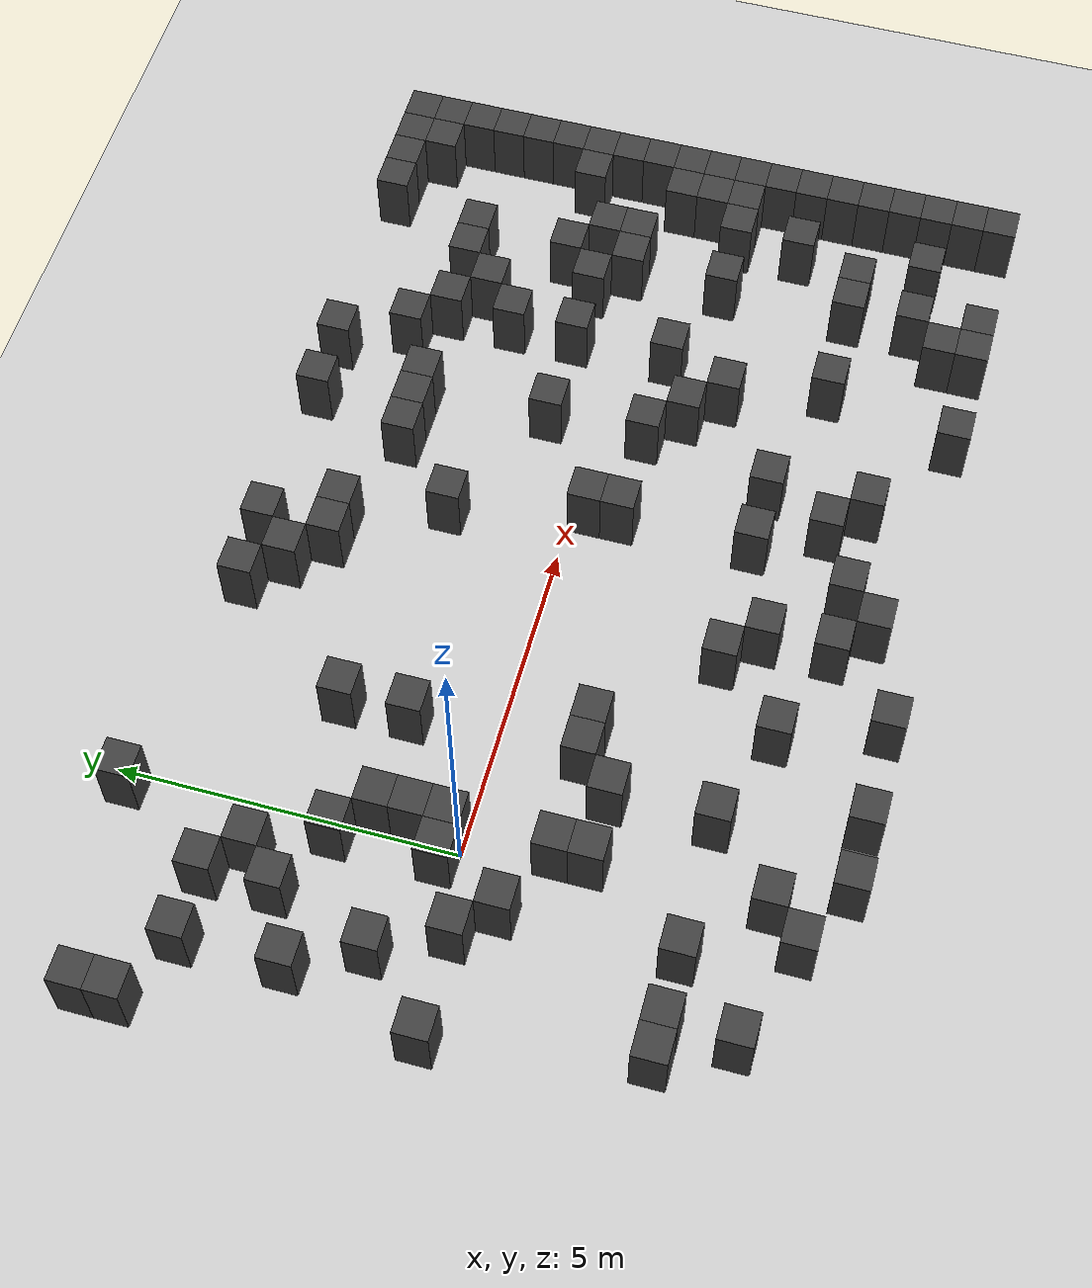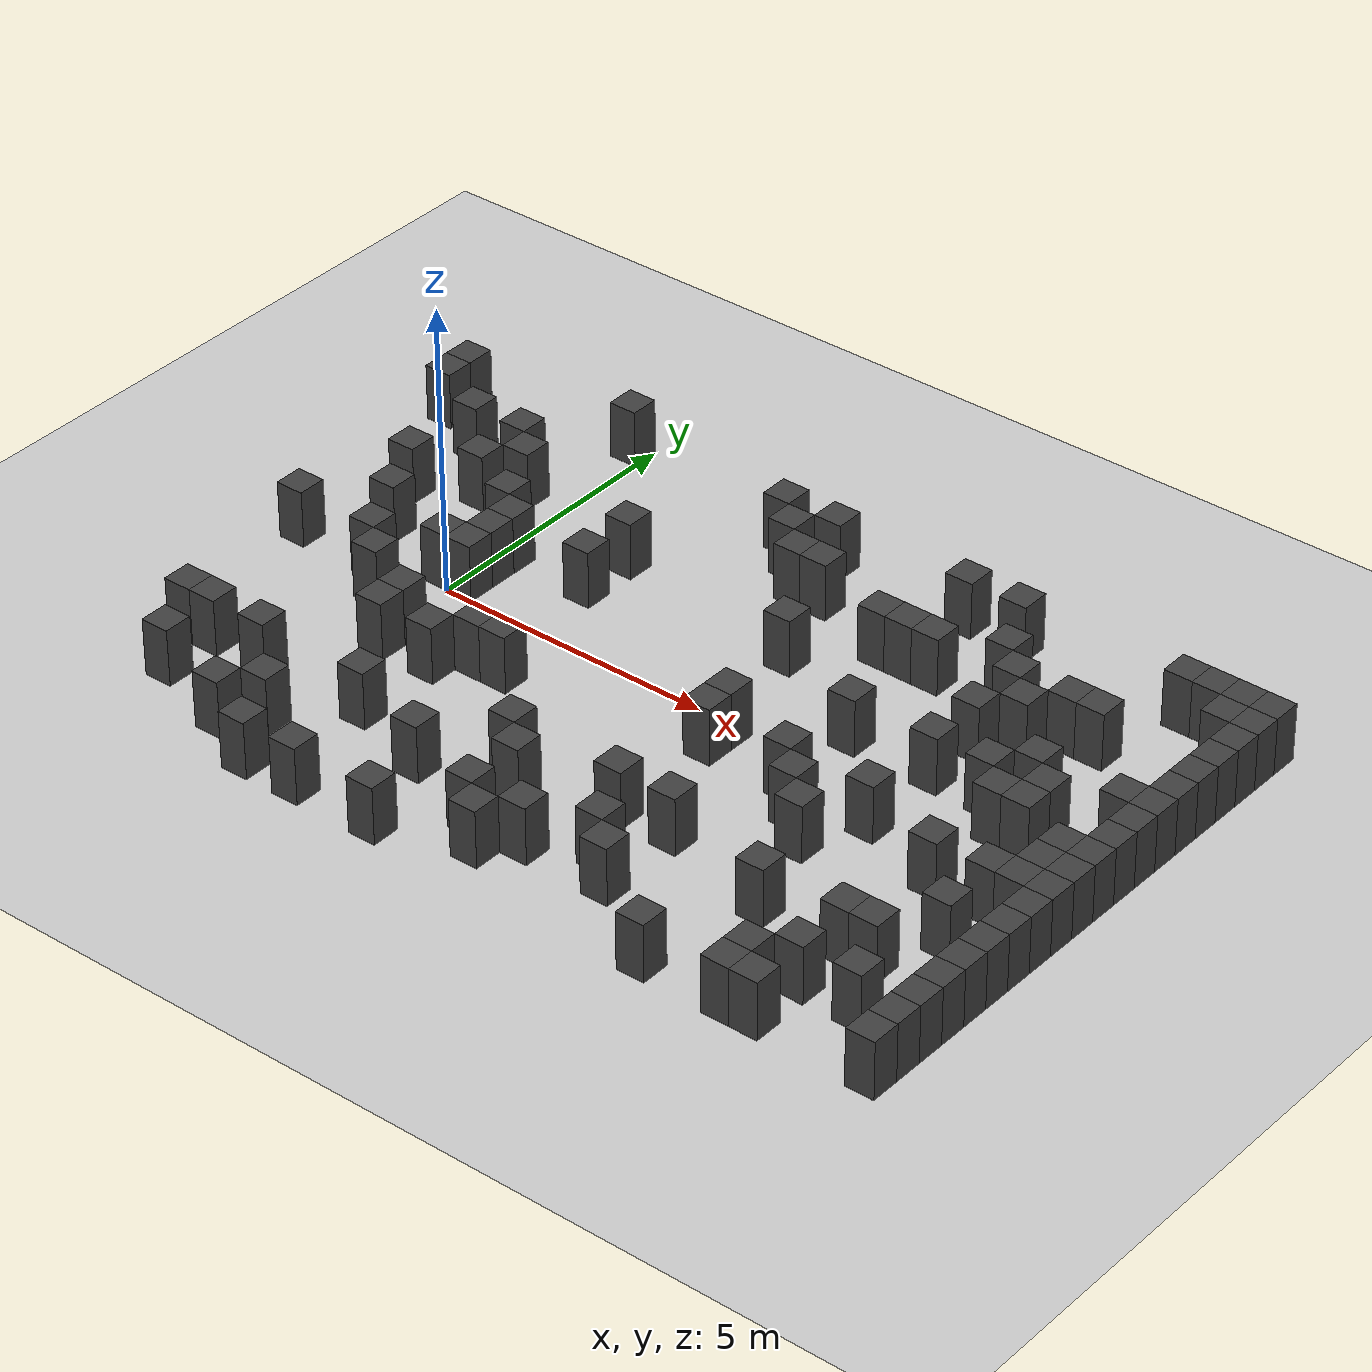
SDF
<sdf version="1.7">
 <world name="map_3200">
  <model name="ground_plane">
   <static>true</static>
   <link name="link">
    <collision name="collision">
     <geometry><plane><normal>0 0 1</normal><size>200 200</size></plane></geometry>
    </collision>
    <visual name="visual">
     <geometry><plane><normal>0 0 1</normal><size>200 200</size></plane></geometry>
     <material><ambient>0.8 0.8 0.8 1</ambient><diffuse>0.8 0.8 0.8 1</diffuse></material>
    </visual>
   </link>
  </model>
  <model name="maze_environment">
   <static>true</static>
   <link name="wall_180">
    <pose>-0.250 4.750 0.500 0 0 0</pose>
    <collision name="col"><geometry><box><size>0.5 0.5 1.0</size></box></geometry></collision>
    <visual name="vis">
     <geometry><box><size>0.5 0.5 1.0</size></box></geometry>
     <material><ambient>0.15 0.15 0.15 1</ambient><diffuse>0.25 0.25 0.25 1</diffuse></material>
    </visual>
   </link>
   <link name="wall_189">
    <pose>-3.250 4.250 0.500 0 0 0</pose>
    <collision name="col"><geometry><box><size>0.5 0.5 1.0</size></box></geometry></collision>
    <visual name="vis">
     <geometry><box><size>0.5 0.5 1.0</size></box></geometry>
     <material><ambient>0.15 0.15 0.15 1</ambient><diffuse>0.25 0.25 0.25 1</diffuse></material>
    </visual>
   </link>
   <link name="wall_190">
    <pose>3.250 4.250 0.500 0 0 0</pose>
    <collision name="col"><geometry><box><size>0.5 0.5 1.0</size></box></geometry></collision>
    <visual name="vis">
     <geometry><box><size>0.5 0.5 1.0</size></box></geometry>
     <material><ambient>0.15 0.15 0.15 1</ambient><diffuse>0.25 0.25 0.25 1</diffuse></material>
    </visual>
   </link>
   <link name="wall_191">
    <pose>4.250 4.250 0.500 0 0 0</pose>
    <collision name="col"><geometry><box><size>0.5 0.5 1.0</size></box></geometry></collision>
    <visual name="vis">
     <geometry><box><size>0.5 0.5 1.0</size></box></geometry>
     <material><ambient>0.15 0.15 0.15 1</ambient><diffuse>0.25 0.25 0.25 1</diffuse></material>
    </visual>
   </link>
   <link name="wall_192">
    <pose>6.750 4.250 0.500 0 0 0</pose>
    <collision name="col"><geometry><box><size>0.5 0.5 1.0</size></box></geometry></collision>
    <visual name="vis">
     <geometry><box><size>0.5 0.5 1.0</size></box></geometry>
     <material><ambient>0.15 0.15 0.15 1</ambient><diffuse>0.25 0.25 0.25 1</diffuse></material>
    </visual>
   </link>
   <link name="wall_193">
    <pose>7.750 4.250 0.500 0 0 0</pose>
    <collision name="col"><geometry><box><size>0.5 0.5 1.0</size></box></geometry></collision>
    <visual name="vis">
     <geometry><box><size>0.5 0.5 1.0</size></box></geometry>
     <material><ambient>0.15 0.15 0.15 1</ambient><diffuse>0.25 0.25 0.25 1</diffuse></material>
    </visual>
   </link>
   <link name="wall_194">
    <pose>10.750 4.250 0.500 0 0 0</pose>
    <collision name="col"><geometry><box><size>0.5 0.5 1.0</size></box></geometry></collision>
    <visual name="vis">
     <geometry><box><size>0.5 0.5 1.0</size></box></geometry>
     <material><ambient>0.15 0.15 0.15 1</ambient><diffuse>0.25 0.25 0.25 1</diffuse></material>
    </visual>
   </link>
   <link name="wall_195">
    <pose>11.250 4.250 0.500 0 0 0</pose>
    <collision name="col"><geometry><box><size>0.5 0.5 1.0</size></box></geometry></collision>
    <visual name="vis">
     <geometry><box><size>0.5 0.5 1.0</size></box></geometry>
     <material><ambient>0.15 0.15 0.15 1</ambient><diffuse>0.25 0.25 0.25 1</diffuse></material>
    </visual>
   </link>
   <link name="wall_196">
    <pose>11.750 4.250 0.500 0 0 0</pose>
    <collision name="col"><geometry><box><size>0.5 0.5 1.0</size></box></geometry></collision>
    <visual name="vis">
     <geometry><box><size>0.5 0.5 1.0</size></box></geometry>
     <material><ambient>0.15 0.15 0.15 1</ambient><diffuse>0.25 0.25 0.25 1</diffuse></material>
    </visual>
   </link>
   <link name="wall_197">
    <pose>12.250 4.250 0.500 0 0 0</pose>
    <collision name="col"><geometry><box><size>0.5 0.5 1.0</size></box></geometry></collision>
    <visual name="vis">
     <geometry><box><size>0.5 0.5 1.0</size></box></geometry>
     <material><ambient>0.15 0.15 0.15 1</ambient><diffuse>0.25 0.25 0.25 1</diffuse></material>
    </visual>
   </link>
   <link name="wall_202">
    <pose>-3.250 3.750 0.500 0 0 0</pose>
    <collision name="col"><geometry><box><size>0.5 0.5 1.0</size></box></geometry></collision>
    <visual name="vis">
     <geometry><box><size>0.5 0.5 1.0</size></box></geometry>
     <material><ambient>0.15 0.15 0.15 1</ambient><diffuse>0.25 0.25 0.25 1</diffuse></material>
    </visual>
   </link>
   <link name="wall_203">
    <pose>3.750 3.750 0.500 0 0 0</pose>
    <collision name="col"><geometry><box><size>0.5 0.5 1.0</size></box></geometry></collision>
    <visual name="vis">
     <geometry><box><size>0.5 0.5 1.0</size></box></geometry>
     <material><ambient>0.15 0.15 0.15 1</ambient><diffuse>0.25 0.25 0.25 1</diffuse></material>
    </visual>
   </link>
   <link name="wall_204">
    <pose>11.750 3.750 0.500 0 0 0</pose>
    <collision name="col"><geometry><box><size>0.5 0.5 1.0</size></box></geometry></collision>
    <visual name="vis">
     <geometry><box><size>0.5 0.5 1.0</size></box></geometry>
     <material><ambient>0.15 0.15 0.15 1</ambient><diffuse>0.25 0.25 0.25 1</diffuse></material>
    </visual>
   </link>
   <link name="wall_205">
    <pose>12.250 3.750 0.500 0 0 0</pose>
    <collision name="col"><geometry><box><size>0.5 0.5 1.0</size></box></geometry></collision>
    <visual name="vis">
     <geometry><box><size>0.5 0.5 1.0</size></box></geometry>
     <material><ambient>0.15 0.15 0.15 1</ambient><diffuse>0.25 0.25 0.25 1</diffuse></material>
    </visual>
   </link>
   <link name="wall_212">
    <pose>-2.250 3.250 0.500 0 0 0</pose>
    <collision name="col"><geometry><box><size>0.5 0.5 1.0</size></box></geometry></collision>
    <visual name="vis">
     <geometry><box><size>0.5 0.5 1.0</size></box></geometry>
     <material><ambient>0.15 0.15 0.15 1</ambient><diffuse>0.25 0.25 0.25 1</diffuse></material>
    </visual>
   </link>
   <link name="wall_213">
    <pose>-1.250 3.250 0.500 0 0 0</pose>
    <collision name="col"><geometry><box><size>0.5 0.5 1.0</size></box></geometry></collision>
    <visual name="vis">
     <geometry><box><size>0.5 0.5 1.0</size></box></geometry>
     <material><ambient>0.15 0.15 0.15 1</ambient><diffuse>0.25 0.25 0.25 1</diffuse></material>
    </visual>
   </link>
   <link name="wall_214">
    <pose>4.250 3.250 0.500 0 0 0</pose>
    <collision name="col"><geometry><box><size>0.5 0.5 1.0</size></box></geometry></collision>
    <visual name="vis">
     <geometry><box><size>0.5 0.5 1.0</size></box></geometry>
     <material><ambient>0.15 0.15 0.15 1</ambient><diffuse>0.25 0.25 0.25 1</diffuse></material>
    </visual>
   </link>
   <link name="wall_215">
    <pose>4.750 3.250 0.500 0 0 0</pose>
    <collision name="col"><geometry><box><size>0.5 0.5 1.0</size></box></geometry></collision>
    <visual name="vis">
     <geometry><box><size>0.5 0.5 1.0</size></box></geometry>
     <material><ambient>0.15 0.15 0.15 1</ambient><diffuse>0.25 0.25 0.25 1</diffuse></material>
    </visual>
   </link>
   <link name="wall_216">
    <pose>8.250 3.250 0.500 0 0 0</pose>
    <collision name="col"><geometry><box><size>0.5 0.5 1.0</size></box></geometry></collision>
    <visual name="vis">
     <geometry><box><size>0.5 0.5 1.0</size></box></geometry>
     <material><ambient>0.15 0.15 0.15 1</ambient><diffuse>0.25 0.25 0.25 1</diffuse></material>
    </visual>
   </link>
   <link name="wall_217">
    <pose>12.250 3.250 0.500 0 0 0</pose>
    <collision name="col"><geometry><box><size>0.5 0.5 1.0</size></box></geometry></collision>
    <visual name="vis">
     <geometry><box><size>0.5 0.5 1.0</size></box></geometry>
     <material><ambient>0.15 0.15 0.15 1</ambient><diffuse>0.25 0.25 0.25 1</diffuse></material>
    </visual>
   </link>
   <link name="wall_221">
    <pose>-0.750 2.750 0.500 0 0 0</pose>
    <collision name="col"><geometry><box><size>0.5 0.5 1.0</size></box></geometry></collision>
    <visual name="vis">
     <geometry><box><size>0.5 0.5 1.0</size></box></geometry>
     <material><ambient>0.15 0.15 0.15 1</ambient><diffuse>0.25 0.25 0.25 1</diffuse></material>
    </visual>
   </link>
   <link name="wall_222">
    <pose>6.250 2.750 0.500 0 0 0</pose>
    <collision name="col"><geometry><box><size>0.5 0.5 1.0</size></box></geometry></collision>
    <visual name="vis">
     <geometry><box><size>0.5 0.5 1.0</size></box></geometry>
     <material><ambient>0.15 0.15 0.15 1</ambient><diffuse>0.25 0.25 0.25 1</diffuse></material>
    </visual>
   </link>
   <link name="wall_223">
    <pose>6.750 2.750 0.500 0 0 0</pose>
    <collision name="col"><geometry><box><size>0.5 0.5 1.0</size></box></geometry></collision>
    <visual name="vis">
     <geometry><box><size>0.5 0.5 1.0</size></box></geometry>
     <material><ambient>0.15 0.15 0.15 1</ambient><diffuse>0.25 0.25 0.25 1</diffuse></material>
    </visual>
   </link>
   <link name="wall_224">
    <pose>7.250 2.750 0.500 0 0 0</pose>
    <collision name="col"><geometry><box><size>0.5 0.5 1.0</size></box></geometry></collision>
    <visual name="vis">
     <geometry><box><size>0.5 0.5 1.0</size></box></geometry>
     <material><ambient>0.15 0.15 0.15 1</ambient><diffuse>0.25 0.25 0.25 1</diffuse></material>
    </visual>
   </link>
   <link name="wall_225">
    <pose>8.750 2.750 0.500 0 0 0</pose>
    <collision name="col"><geometry><box><size>0.5 0.5 1.0</size></box></geometry></collision>
    <visual name="vis">
     <geometry><box><size>0.5 0.5 1.0</size></box></geometry>
     <material><ambient>0.15 0.15 0.15 1</ambient><diffuse>0.25 0.25 0.25 1</diffuse></material>
    </visual>
   </link>
   <link name="wall_226">
    <pose>9.750 2.750 0.500 0 0 0</pose>
    <collision name="col"><geometry><box><size>0.5 0.5 1.0</size></box></geometry></collision>
    <visual name="vis">
     <geometry><box><size>0.5 0.5 1.0</size></box></geometry>
     <material><ambient>0.15 0.15 0.15 1</ambient><diffuse>0.25 0.25 0.25 1</diffuse></material>
    </visual>
   </link>
   <link name="wall_227">
    <pose>10.250 2.750 0.500 0 0 0</pose>
    <collision name="col"><geometry><box><size>0.5 0.5 1.0</size></box></geometry></collision>
    <visual name="vis">
     <geometry><box><size>0.5 0.5 1.0</size></box></geometry>
     <material><ambient>0.15 0.15 0.15 1</ambient><diffuse>0.25 0.25 0.25 1</diffuse></material>
    </visual>
   </link>
   <link name="wall_228">
    <pose>12.250 2.750 0.500 0 0 0</pose>
    <collision name="col"><geometry><box><size>0.5 0.5 1.0</size></box></geometry></collision>
    <visual name="vis">
     <geometry><box><size>0.5 0.5 1.0</size></box></geometry>
     <material><ambient>0.15 0.15 0.15 1</ambient><diffuse>0.25 0.25 0.25 1</diffuse></material>
    </visual>
   </link>
   <link name="wall_232">
    <pose>-1.250 2.250 0.500 0 0 0</pose>
    <collision name="col"><geometry><box><size>0.5 0.5 1.0</size></box></geometry></collision>
    <visual name="vis">
     <geometry><box><size>0.5 0.5 1.0</size></box></geometry>
     <material><ambient>0.15 0.15 0.15 1</ambient><diffuse>0.25 0.25 0.25 1</diffuse></material>
    </visual>
   </link>
   <link name="wall_233">
    <pose>1.750 2.250 0.500 0 0 0</pose>
    <collision name="col"><geometry><box><size>0.5 0.5 1.0</size></box></geometry></collision>
    <visual name="vis">
     <geometry><box><size>0.5 0.5 1.0</size></box></geometry>
     <material><ambient>0.15 0.15 0.15 1</ambient><diffuse>0.25 0.25 0.25 1</diffuse></material>
    </visual>
   </link>
   <link name="wall_234">
    <pose>9.250 2.250 0.500 0 0 0</pose>
    <collision name="col"><geometry><box><size>0.5 0.5 1.0</size></box></geometry></collision>
    <visual name="vis">
     <geometry><box><size>0.5 0.5 1.0</size></box></geometry>
     <material><ambient>0.15 0.15 0.15 1</ambient><diffuse>0.25 0.25 0.25 1</diffuse></material>
    </visual>
   </link>
   <link name="wall_235">
    <pose>12.250 2.250 0.500 0 0 0</pose>
    <collision name="col"><geometry><box><size>0.5 0.5 1.0</size></box></geometry></collision>
    <visual name="vis">
     <geometry><box><size>0.5 0.5 1.0</size></box></geometry>
     <material><ambient>0.15 0.15 0.15 1</ambient><diffuse>0.25 0.25 0.25 1</diffuse></material>
    </visual>
   </link>
   <link name="wall_239">
    <pose>-2.250 1.750 0.500 0 0 0</pose>
    <collision name="col"><geometry><box><size>0.5 0.5 1.0</size></box></geometry></collision>
    <visual name="vis">
     <geometry><box><size>0.5 0.5 1.0</size></box></geometry>
     <material><ambient>0.15 0.15 0.15 1</ambient><diffuse>0.25 0.25 0.25 1</diffuse></material>
    </visual>
   </link>
   <link name="wall_240">
    <pose>-0.250 1.750 0.500 0 0 0</pose>
    <collision name="col"><geometry><box><size>0.5 0.5 1.0</size></box></geometry></collision>
    <visual name="vis">
     <geometry><box><size>0.5 0.5 1.0</size></box></geometry>
     <material><ambient>0.15 0.15 0.15 1</ambient><diffuse>0.25 0.25 0.25 1</diffuse></material>
    </visual>
   </link>
   <link name="wall_241">
    <pose>5.250 1.750 0.500 0 0 0</pose>
    <collision name="col"><geometry><box><size>0.5 0.5 1.0</size></box></geometry></collision>
    <visual name="vis">
     <geometry><box><size>0.5 0.5 1.0</size></box></geometry>
     <material><ambient>0.15 0.15 0.15 1</ambient><diffuse>0.25 0.25 0.25 1</diffuse></material>
    </visual>
   </link>
   <link name="wall_242">
    <pose>8.750 1.750 0.500 0 0 0</pose>
    <collision name="col"><geometry><box><size>0.5 0.5 1.0</size></box></geometry></collision>
    <visual name="vis">
     <geometry><box><size>0.5 0.5 1.0</size></box></geometry>
     <material><ambient>0.15 0.15 0.15 1</ambient><diffuse>0.25 0.25 0.25 1</diffuse></material>
    </visual>
   </link>
   <link name="wall_243">
    <pose>12.250 1.750 0.500 0 0 0</pose>
    <collision name="col"><geometry><box><size>0.5 0.5 1.0</size></box></geometry></collision>
    <visual name="vis">
     <geometry><box><size>0.5 0.5 1.0</size></box></geometry>
     <material><ambient>0.15 0.15 0.15 1</ambient><diffuse>0.25 0.25 0.25 1</diffuse></material>
    </visual>
   </link>
   <link name="wall_250">
    <pose>0.250 1.250 0.500 0 0 0</pose>
    <collision name="col"><geometry><box><size>0.5 0.5 1.0</size></box></geometry></collision>
    <visual name="vis">
     <geometry><box><size>0.5 0.5 1.0</size></box></geometry>
     <material><ambient>0.15 0.15 0.15 1</ambient><diffuse>0.25 0.25 0.25 1</diffuse></material>
    </visual>
   </link>
   <link name="wall_251">
    <pose>1.750 1.250 0.500 0 0 0</pose>
    <collision name="col"><geometry><box><size>0.5 0.5 1.0</size></box></geometry></collision>
    <visual name="vis">
     <geometry><box><size>0.5 0.5 1.0</size></box></geometry>
     <material><ambient>0.15 0.15 0.15 1</ambient><diffuse>0.25 0.25 0.25 1</diffuse></material>
    </visual>
   </link>
   <link name="wall_252">
    <pose>10.250 1.250 0.500 0 0 0</pose>
    <collision name="col"><geometry><box><size>0.5 0.5 1.0</size></box></geometry></collision>
    <visual name="vis">
     <geometry><box><size>0.5 0.5 1.0</size></box></geometry>
     <material><ambient>0.15 0.15 0.15 1</ambient><diffuse>0.25 0.25 0.25 1</diffuse></material>
    </visual>
   </link>
   <link name="wall_253">
    <pose>11.750 1.250 0.500 0 0 0</pose>
    <collision name="col"><geometry><box><size>0.5 0.5 1.0</size></box></geometry></collision>
    <visual name="vis">
     <geometry><box><size>0.5 0.5 1.0</size></box></geometry>
     <material><ambient>0.15 0.15 0.15 1</ambient><diffuse>0.25 0.25 0.25 1</diffuse></material>
    </visual>
   </link>
   <link name="wall_254">
    <pose>12.250 1.250 0.500 0 0 0</pose>
    <collision name="col"><geometry><box><size>0.5 0.5 1.0</size></box></geometry></collision>
    <visual name="vis">
     <geometry><box><size>0.5 0.5 1.0</size></box></geometry>
     <material><ambient>0.15 0.15 0.15 1</ambient><diffuse>0.25 0.25 0.25 1</diffuse></material>
    </visual>
   </link>
   <link name="wall_257">
    <pose>-1.750 0.750 0.500 0 0 0</pose>
    <collision name="col"><geometry><box><size>0.5 0.5 1.0</size></box></geometry></collision>
    <visual name="vis">
     <geometry><box><size>0.5 0.5 1.0</size></box></geometry>
     <material><ambient>0.15 0.15 0.15 1</ambient><diffuse>0.25 0.25 0.25 1</diffuse></material>
    </visual>
   </link>
   <link name="wall_258">
    <pose>0.250 0.750 0.500 0 0 0</pose>
    <collision name="col"><geometry><box><size>0.5 0.5 1.0</size></box></geometry></collision>
    <visual name="vis">
     <geometry><box><size>0.5 0.5 1.0</size></box></geometry>
     <material><ambient>0.15 0.15 0.15 1</ambient><diffuse>0.25 0.25 0.25 1</diffuse></material>
    </visual>
   </link>
   <link name="wall_259">
    <pose>7.250 0.750 0.500 0 0 0</pose>
    <collision name="col"><geometry><box><size>0.5 0.5 1.0</size></box></geometry></collision>
    <visual name="vis">
     <geometry><box><size>0.5 0.5 1.0</size></box></geometry>
     <material><ambient>0.15 0.15 0.15 1</ambient><diffuse>0.25 0.25 0.25 1</diffuse></material>
    </visual>
   </link>
   <link name="wall_260">
    <pose>8.750 0.750 0.500 0 0 0</pose>
    <collision name="col"><geometry><box><size>0.5 0.5 1.0</size></box></geometry></collision>
    <visual name="vis">
     <geometry><box><size>0.5 0.5 1.0</size></box></geometry>
     <material><ambient>0.15 0.15 0.15 1</ambient><diffuse>0.25 0.25 0.25 1</diffuse></material>
    </visual>
   </link>
   <link name="wall_261">
    <pose>9.750 0.750 0.500 0 0 0</pose>
    <collision name="col"><geometry><box><size>0.5 0.5 1.0</size></box></geometry></collision>
    <visual name="vis">
     <geometry><box><size>0.5 0.5 1.0</size></box></geometry>
     <material><ambient>0.15 0.15 0.15 1</ambient><diffuse>0.25 0.25 0.25 1</diffuse></material>
    </visual>
   </link>
   <link name="wall_262">
    <pose>10.750 0.750 0.500 0 0 0</pose>
    <collision name="col"><geometry><box><size>0.5 0.5 1.0</size></box></geometry></collision>
    <visual name="vis">
     <geometry><box><size>0.5 0.5 1.0</size></box></geometry>
     <material><ambient>0.15 0.15 0.15 1</ambient><diffuse>0.25 0.25 0.25 1</diffuse></material>
    </visual>
   </link>
   <link name="wall_263">
    <pose>12.250 0.750 0.500 0 0 0</pose>
    <collision name="col"><geometry><box><size>0.5 0.5 1.0</size></box></geometry></collision>
    <visual name="vis">
     <geometry><box><size>0.5 0.5 1.0</size></box></geometry>
     <material><ambient>0.15 0.15 0.15 1</ambient><diffuse>0.25 0.25 0.25 1</diffuse></material>
    </visual>
   </link>
   <link name="wall_271">
    <pose>-0.250 0.250 0.500 0 0 0</pose>
    <collision name="col"><geometry><box><size>0.5 0.5 1.0</size></box></geometry></collision>
    <visual name="vis">
     <geometry><box><size>0.5 0.5 1.0</size></box></geometry>
     <material><ambient>0.15 0.15 0.15 1</ambient><diffuse>0.25 0.25 0.25 1</diffuse></material>
    </visual>
   </link>
   <link name="wall_272">
    <pose>0.250 0.250 0.500 0 0 0</pose>
    <collision name="col"><geometry><box><size>0.5 0.5 1.0</size></box></geometry></collision>
    <visual name="vis">
     <geometry><box><size>0.5 0.5 1.0</size></box></geometry>
     <material><ambient>0.15 0.15 0.15 1</ambient><diffuse>0.25 0.25 0.25 1</diffuse></material>
    </visual>
   </link>
   <link name="wall_273">
    <pose>10.250 0.250 0.500 0 0 0</pose>
    <collision name="col"><geometry><box><size>0.5 0.5 1.0</size></box></geometry></collision>
    <visual name="vis">
     <geometry><box><size>0.5 0.5 1.0</size></box></geometry>
     <material><ambient>0.15 0.15 0.15 1</ambient><diffuse>0.25 0.25 0.25 1</diffuse></material>
    </visual>
   </link>
   <link name="wall_274">
    <pose>10.750 0.250 0.500 0 0 0</pose>
    <collision name="col"><geometry><box><size>0.5 0.5 1.0</size></box></geometry></collision>
    <visual name="vis">
     <geometry><box><size>0.5 0.5 1.0</size></box></geometry>
     <material><ambient>0.15 0.15 0.15 1</ambient><diffuse>0.25 0.25 0.25 1</diffuse></material>
    </visual>
   </link>
   <link name="wall_275">
    <pose>12.250 0.250 0.500 0 0 0</pose>
    <collision name="col"><geometry><box><size>0.5 0.5 1.0</size></box></geometry></collision>
    <visual name="vis">
     <geometry><box><size>0.5 0.5 1.0</size></box></geometry>
     <material><ambient>0.15 0.15 0.15 1</ambient><diffuse>0.25 0.25 0.25 1</diffuse></material>
    </visual>
   </link>
   <link name="wall_282">
    <pose>-2.750 -0.250 0.500 0 0 0</pose>
    <collision name="col"><geometry><box><size>0.5 0.5 1.0</size></box></geometry></collision>
    <visual name="vis">
     <geometry><box><size>0.5 0.5 1.0</size></box></geometry>
     <material><ambient>0.15 0.15 0.15 1</ambient><diffuse>0.25 0.25 0.25 1</diffuse></material>
    </visual>
   </link>
   <link name="wall_283">
    <pose>-1.250 -0.250 0.500 0 0 0</pose>
    <collision name="col"><geometry><box><size>0.5 0.5 1.0</size></box></geometry></collision>
    <visual name="vis">
     <geometry><box><size>0.5 0.5 1.0</size></box></geometry>
     <material><ambient>0.15 0.15 0.15 1</ambient><diffuse>0.25 0.25 0.25 1</diffuse></material>
    </visual>
   </link>
   <link name="wall_284">
    <pose>5.750 -0.250 0.500 0 0 0</pose>
    <collision name="col"><geometry><box><size>0.5 0.5 1.0</size></box></geometry></collision>
    <visual name="vis">
     <geometry><box><size>0.5 0.5 1.0</size></box></geometry>
     <material><ambient>0.15 0.15 0.15 1</ambient><diffuse>0.25 0.25 0.25 1</diffuse></material>
    </visual>
   </link>
   <link name="wall_285">
    <pose>11.750 -0.250 0.500 0 0 0</pose>
    <collision name="col"><geometry><box><size>0.5 0.5 1.0</size></box></geometry></collision>
    <visual name="vis">
     <geometry><box><size>0.5 0.5 1.0</size></box></geometry>
     <material><ambient>0.15 0.15 0.15 1</ambient><diffuse>0.25 0.25 0.25 1</diffuse></material>
    </visual>
   </link>
   <link name="wall_286">
    <pose>12.250 -0.250 0.500 0 0 0</pose>
    <collision name="col"><geometry><box><size>0.5 0.5 1.0</size></box></geometry></collision>
    <visual name="vis">
     <geometry><box><size>0.5 0.5 1.0</size></box></geometry>
     <material><ambient>0.15 0.15 0.15 1</ambient><diffuse>0.25 0.25 0.25 1</diffuse></material>
    </visual>
   </link>
   <link name="wall_292">
    <pose>-0.750 -0.750 0.500 0 0 0</pose>
    <collision name="col"><geometry><box><size>0.5 0.5 1.0</size></box></geometry></collision>
    <visual name="vis">
     <geometry><box><size>0.5 0.5 1.0</size></box></geometry>
     <material><ambient>0.15 0.15 0.15 1</ambient><diffuse>0.25 0.25 0.25 1</diffuse></material>
    </visual>
   </link>
   <link name="wall_293">
    <pose>5.750 -0.750 0.500 0 0 0</pose>
    <collision name="col"><geometry><box><size>0.5 0.5 1.0</size></box></geometry></collision>
    <visual name="vis">
     <geometry><box><size>0.5 0.5 1.0</size></box></geometry>
     <material><ambient>0.15 0.15 0.15 1</ambient><diffuse>0.25 0.25 0.25 1</diffuse></material>
    </visual>
   </link>
   <link name="wall_294">
    <pose>7.250 -0.750 0.500 0 0 0</pose>
    <collision name="col"><geometry><box><size>0.5 0.5 1.0</size></box></geometry></collision>
    <visual name="vis">
     <geometry><box><size>0.5 0.5 1.0</size></box></geometry>
     <material><ambient>0.15 0.15 0.15 1</ambient><diffuse>0.25 0.25 0.25 1</diffuse></material>
    </visual>
   </link>
   <link name="wall_295">
    <pose>8.750 -0.750 0.500 0 0 0</pose>
    <collision name="col"><geometry><box><size>0.5 0.5 1.0</size></box></geometry></collision>
    <visual name="vis">
     <geometry><box><size>0.5 0.5 1.0</size></box></geometry>
     <material><ambient>0.15 0.15 0.15 1</ambient><diffuse>0.25 0.25 0.25 1</diffuse></material>
    </visual>
   </link>
   <link name="wall_296">
    <pose>11.750 -0.750 0.500 0 0 0</pose>
    <collision name="col"><geometry><box><size>0.5 0.5 1.0</size></box></geometry></collision>
    <visual name="vis">
     <geometry><box><size>0.5 0.5 1.0</size></box></geometry>
     <material><ambient>0.15 0.15 0.15 1</ambient><diffuse>0.25 0.25 0.25 1</diffuse></material>
    </visual>
   </link>
   <link name="wall_297">
    <pose>12.250 -0.750 0.500 0 0 0</pose>
    <collision name="col"><geometry><box><size>0.5 0.5 1.0</size></box></geometry></collision>
    <visual name="vis">
     <geometry><box><size>0.5 0.5 1.0</size></box></geometry>
     <material><ambient>0.15 0.15 0.15 1</ambient><diffuse>0.25 0.25 0.25 1</diffuse></material>
    </visual>
   </link>
   <link name="wall_306">
    <pose>0.250 -1.250 0.500 0 0 0</pose>
    <collision name="col"><geometry><box><size>0.5 0.5 1.0</size></box></geometry></collision>
    <visual name="vis">
     <geometry><box><size>0.5 0.5 1.0</size></box></geometry>
     <material><ambient>0.15 0.15 0.15 1</ambient><diffuse>0.25 0.25 0.25 1</diffuse></material>
    </visual>
   </link>
   <link name="wall_307">
    <pose>1.750 -1.250 0.500 0 0 0</pose>
    <collision name="col"><geometry><box><size>0.5 0.5 1.0</size></box></geometry></collision>
    <visual name="vis">
     <geometry><box><size>0.5 0.5 1.0</size></box></geometry>
     <material><ambient>0.15 0.15 0.15 1</ambient><diffuse>0.25 0.25 0.25 1</diffuse></material>
    </visual>
   </link>
   <link name="wall_308">
    <pose>2.250 -1.250 0.500 0 0 0</pose>
    <collision name="col"><geometry><box><size>0.5 0.5 1.0</size></box></geometry></collision>
    <visual name="vis">
     <geometry><box><size>0.5 0.5 1.0</size></box></geometry>
     <material><ambient>0.15 0.15 0.15 1</ambient><diffuse>0.25 0.25 0.25 1</diffuse></material>
    </visual>
   </link>
   <link name="wall_309">
    <pose>7.750 -1.250 0.500 0 0 0</pose>
    <collision name="col"><geometry><box><size>0.5 0.5 1.0</size></box></geometry></collision>
    <visual name="vis">
     <geometry><box><size>0.5 0.5 1.0</size></box></geometry>
     <material><ambient>0.15 0.15 0.15 1</ambient><diffuse>0.25 0.25 0.25 1</diffuse></material>
    </visual>
   </link>
   <link name="wall_310">
    <pose>10.250 -1.250 0.500 0 0 0</pose>
    <collision name="col"><geometry><box><size>0.5 0.5 1.0</size></box></geometry></collision>
    <visual name="vis">
     <geometry><box><size>0.5 0.5 1.0</size></box></geometry>
     <material><ambient>0.15 0.15 0.15 1</ambient><diffuse>0.25 0.25 0.25 1</diffuse></material>
    </visual>
   </link>
   <link name="wall_311">
    <pose>11.250 -1.250 0.500 0 0 0</pose>
    <collision name="col"><geometry><box><size>0.5 0.5 1.0</size></box></geometry></collision>
    <visual name="vis">
     <geometry><box><size>0.5 0.5 1.0</size></box></geometry>
     <material><ambient>0.15 0.15 0.15 1</ambient><diffuse>0.25 0.25 0.25 1</diffuse></material>
    </visual>
   </link>
   <link name="wall_312">
    <pose>11.750 -1.250 0.500 0 0 0</pose>
    <collision name="col"><geometry><box><size>0.5 0.5 1.0</size></box></geometry></collision>
    <visual name="vis">
     <geometry><box><size>0.5 0.5 1.0</size></box></geometry>
     <material><ambient>0.15 0.15 0.15 1</ambient><diffuse>0.25 0.25 0.25 1</diffuse></material>
    </visual>
   </link>
   <link name="wall_313">
    <pose>12.250 -1.250 0.500 0 0 0</pose>
    <collision name="col"><geometry><box><size>0.5 0.5 1.0</size></box></geometry></collision>
    <visual name="vis">
     <geometry><box><size>0.5 0.5 1.0</size></box></geometry>
     <material><ambient>0.15 0.15 0.15 1</ambient><diffuse>0.25 0.25 0.25 1</diffuse></material>
    </visual>
   </link>
   <link name="wall_319">
    <pose>0.250 -1.750 0.500 0 0 0</pose>
    <collision name="col"><geometry><box><size>0.5 0.5 1.0</size></box></geometry></collision>
    <visual name="vis">
     <geometry><box><size>0.5 0.5 1.0</size></box></geometry>
     <material><ambient>0.15 0.15 0.15 1</ambient><diffuse>0.25 0.25 0.25 1</diffuse></material>
    </visual>
   </link>
   <link name="wall_320">
    <pose>1.250 -1.750 0.500 0 0 0</pose>
    <collision name="col"><geometry><box><size>0.5 0.5 1.0</size></box></geometry></collision>
    <visual name="vis">
     <geometry><box><size>0.5 0.5 1.0</size></box></geometry>
     <material><ambient>0.15 0.15 0.15 1</ambient><diffuse>0.25 0.25 0.25 1</diffuse></material>
    </visual>
   </link>
   <link name="wall_321">
    <pose>8.250 -1.750 0.500 0 0 0</pose>
    <collision name="col"><geometry><box><size>0.5 0.5 1.0</size></box></geometry></collision>
    <visual name="vis">
     <geometry><box><size>0.5 0.5 1.0</size></box></geometry>
     <material><ambient>0.15 0.15 0.15 1</ambient><diffuse>0.25 0.25 0.25 1</diffuse></material>
    </visual>
   </link>
   <link name="wall_322">
    <pose>12.250 -1.750 0.500 0 0 0</pose>
    <collision name="col"><geometry><box><size>0.5 0.5 1.0</size></box></geometry></collision>
    <visual name="vis">
     <geometry><box><size>0.5 0.5 1.0</size></box></geometry>
     <material><ambient>0.15 0.15 0.15 1</ambient><diffuse>0.25 0.25 0.25 1</diffuse></material>
    </visual>
   </link>
   <link name="wall_326">
    <pose>11.250 -2.250 0.500 0 0 0</pose>
    <collision name="col"><geometry><box><size>0.5 0.5 1.0</size></box></geometry></collision>
    <visual name="vis">
     <geometry><box><size>0.5 0.5 1.0</size></box></geometry>
     <material><ambient>0.15 0.15 0.15 1</ambient><diffuse>0.25 0.25 0.25 1</diffuse></material>
    </visual>
   </link>
   <link name="wall_327">
    <pose>12.250 -2.250 0.500 0 0 0</pose>
    <collision name="col"><geometry><box><size>0.5 0.5 1.0</size></box></geometry></collision>
    <visual name="vis">
     <geometry><box><size>0.5 0.5 1.0</size></box></geometry>
     <material><ambient>0.15 0.15 0.15 1</ambient><diffuse>0.25 0.25 0.25 1</diffuse></material>
    </visual>
   </link>
   <link name="wall_332">
    <pose>3.750 -2.750 0.500 0 0 0</pose>
    <collision name="col"><geometry><box><size>0.5 0.5 1.0</size></box></geometry></collision>
    <visual name="vis">
     <geometry><box><size>0.5 0.5 1.0</size></box></geometry>
     <material><ambient>0.15 0.15 0.15 1</ambient><diffuse>0.25 0.25 0.25 1</diffuse></material>
    </visual>
   </link>
   <link name="wall_333">
    <pose>5.750 -2.750 0.500 0 0 0</pose>
    <collision name="col"><geometry><box><size>0.5 0.5 1.0</size></box></geometry></collision>
    <visual name="vis">
     <geometry><box><size>0.5 0.5 1.0</size></box></geometry>
     <material><ambient>0.15 0.15 0.15 1</ambient><diffuse>0.25 0.25 0.25 1</diffuse></material>
    </visual>
   </link>
   <link name="wall_334">
    <pose>6.750 -2.750 0.500 0 0 0</pose>
    <collision name="col"><geometry><box><size>0.5 0.5 1.0</size></box></geometry></collision>
    <visual name="vis">
     <geometry><box><size>0.5 0.5 1.0</size></box></geometry>
     <material><ambient>0.15 0.15 0.15 1</ambient><diffuse>0.25 0.25 0.25 1</diffuse></material>
    </visual>
   </link>
   <link name="wall_335">
    <pose>12.250 -2.750 0.500 0 0 0</pose>
    <collision name="col"><geometry><box><size>0.5 0.5 1.0</size></box></geometry></collision>
    <visual name="vis">
     <geometry><box><size>0.5 0.5 1.0</size></box></geometry>
     <material><ambient>0.15 0.15 0.15 1</ambient><diffuse>0.25 0.25 0.25 1</diffuse></material>
    </visual>
   </link>
   <link name="wall_340">
    <pose>-2.250 -3.250 0.500 0 0 0</pose>
    <collision name="col"><geometry><box><size>0.5 0.5 1.0</size></box></geometry></collision>
    <visual name="vis">
     <geometry><box><size>0.5 0.5 1.0</size></box></geometry>
     <material><ambient>0.15 0.15 0.15 1</ambient><diffuse>0.25 0.25 0.25 1</diffuse></material>
    </visual>
   </link>
   <link name="wall_341">
    <pose>-1.750 -3.250 0.500 0 0 0</pose>
    <collision name="col"><geometry><box><size>0.5 0.5 1.0</size></box></geometry></collision>
    <visual name="vis">
     <geometry><box><size>0.5 0.5 1.0</size></box></geometry>
     <material><ambient>0.15 0.15 0.15 1</ambient><diffuse>0.25 0.25 0.25 1</diffuse></material>
    </visual>
   </link>
   <link name="wall_342">
    <pose>-0.750 -3.250 0.500 0 0 0</pose>
    <collision name="col"><geometry><box><size>0.5 0.5 1.0</size></box></geometry></collision>
    <visual name="vis">
     <geometry><box><size>0.5 0.5 1.0</size></box></geometry>
     <material><ambient>0.15 0.15 0.15 1</ambient><diffuse>0.25 0.25 0.25 1</diffuse></material>
    </visual>
   </link>
   <link name="wall_343">
    <pose>1.250 -3.250 0.500 0 0 0</pose>
    <collision name="col"><geometry><box><size>0.5 0.5 1.0</size></box></geometry></collision>
    <visual name="vis">
     <geometry><box><size>0.5 0.5 1.0</size></box></geometry>
     <material><ambient>0.15 0.15 0.15 1</ambient><diffuse>0.25 0.25 0.25 1</diffuse></material>
    </visual>
   </link>
   <link name="wall_344">
    <pose>4.250 -3.250 0.500 0 0 0</pose>
    <collision name="col"><geometry><box><size>0.5 0.5 1.0</size></box></geometry></collision>
    <visual name="vis">
     <geometry><box><size>0.5 0.5 1.0</size></box></geometry>
     <material><ambient>0.15 0.15 0.15 1</ambient><diffuse>0.25 0.25 0.25 1</diffuse></material>
    </visual>
   </link>
   <link name="wall_345">
    <pose>8.750 -3.250 0.500 0 0 0</pose>
    <collision name="col"><geometry><box><size>0.5 0.5 1.0</size></box></geometry></collision>
    <visual name="vis">
     <geometry><box><size>0.5 0.5 1.0</size></box></geometry>
     <material><ambient>0.15 0.15 0.15 1</ambient><diffuse>0.25 0.25 0.25 1</diffuse></material>
    </visual>
   </link>
   <link name="wall_346">
    <pose>10.250 -3.250 0.500 0 0 0</pose>
    <collision name="col"><geometry><box><size>0.5 0.5 1.0</size></box></geometry></collision>
    <visual name="vis">
     <geometry><box><size>0.5 0.5 1.0</size></box></geometry>
     <material><ambient>0.15 0.15 0.15 1</ambient><diffuse>0.25 0.25 0.25 1</diffuse></material>
    </visual>
   </link>
   <link name="wall_347">
    <pose>10.750 -3.250 0.500 0 0 0</pose>
    <collision name="col"><geometry><box><size>0.5 0.5 1.0</size></box></geometry></collision>
    <visual name="vis">
     <geometry><box><size>0.5 0.5 1.0</size></box></geometry>
     <material><ambient>0.15 0.15 0.15 1</ambient><diffuse>0.25 0.25 0.25 1</diffuse></material>
    </visual>
   </link>
   <link name="wall_348">
    <pose>12.250 -3.250 0.500 0 0 0</pose>
    <collision name="col"><geometry><box><size>0.5 0.5 1.0</size></box></geometry></collision>
    <visual name="vis">
     <geometry><box><size>0.5 0.5 1.0</size></box></geometry>
     <material><ambient>0.15 0.15 0.15 1</ambient><diffuse>0.25 0.25 0.25 1</diffuse></material>
    </visual>
   </link>
   <link name="wall_352">
    <pose>2.750 -3.750 0.500 0 0 0</pose>
    <collision name="col"><geometry><box><size>0.5 0.5 1.0</size></box></geometry></collision>
    <visual name="vis">
     <geometry><box><size>0.5 0.5 1.0</size></box></geometry>
     <material><ambient>0.15 0.15 0.15 1</ambient><diffuse>0.25 0.25 0.25 1</diffuse></material>
    </visual>
   </link>
   <link name="wall_353">
    <pose>6.250 -3.750 0.500 0 0 0</pose>
    <collision name="col"><geometry><box><size>0.5 0.5 1.0</size></box></geometry></collision>
    <visual name="vis">
     <geometry><box><size>0.5 0.5 1.0</size></box></geometry>
     <material><ambient>0.15 0.15 0.15 1</ambient><diffuse>0.25 0.25 0.25 1</diffuse></material>
    </visual>
   </link>
   <link name="wall_354">
    <pose>12.250 -3.750 0.500 0 0 0</pose>
    <collision name="col"><geometry><box><size>0.5 0.5 1.0</size></box></geometry></collision>
    <visual name="vis">
     <geometry><box><size>0.5 0.5 1.0</size></box></geometry>
     <material><ambient>0.15 0.15 0.15 1</ambient><diffuse>0.25 0.25 0.25 1</diffuse></material>
    </visual>
   </link>
   <link name="wall_359">
    <pose>-1.750 -4.250 0.500 0 0 0</pose>
    <collision name="col"><geometry><box><size>0.5 0.5 1.0</size></box></geometry></collision>
    <visual name="vis">
     <geometry><box><size>0.5 0.5 1.0</size></box></geometry>
     <material><ambient>0.15 0.15 0.15 1</ambient><diffuse>0.25 0.25 0.25 1</diffuse></material>
    </visual>
   </link>
   <link name="wall_360">
    <pose>0.250 -4.250 0.500 0 0 0</pose>
    <collision name="col"><geometry><box><size>0.5 0.5 1.0</size></box></geometry></collision>
    <visual name="vis">
     <geometry><box><size>0.5 0.5 1.0</size></box></geometry>
     <material><ambient>0.15 0.15 0.15 1</ambient><diffuse>0.25 0.25 0.25 1</diffuse></material>
    </visual>
   </link>
   <link name="wall_361">
    <pose>4.250 -4.250 0.500 0 0 0</pose>
    <collision name="col"><geometry><box><size>0.5 0.5 1.0</size></box></geometry></collision>
    <visual name="vis">
     <geometry><box><size>0.5 0.5 1.0</size></box></geometry>
     <material><ambient>0.15 0.15 0.15 1</ambient><diffuse>0.25 0.25 0.25 1</diffuse></material>
    </visual>
   </link>
   <link name="wall_362">
    <pose>5.250 -4.250 0.500 0 0 0</pose>
    <collision name="col"><geometry><box><size>0.5 0.5 1.0</size></box></geometry></collision>
    <visual name="vis">
     <geometry><box><size>0.5 0.5 1.0</size></box></geometry>
     <material><ambient>0.15 0.15 0.15 1</ambient><diffuse>0.25 0.25 0.25 1</diffuse></material>
    </visual>
   </link>
   <link name="wall_363">
    <pose>6.750 -4.250 0.500 0 0 0</pose>
    <collision name="col"><geometry><box><size>0.5 0.5 1.0</size></box></geometry></collision>
    <visual name="vis">
     <geometry><box><size>0.5 0.5 1.0</size></box></geometry>
     <material><ambient>0.15 0.15 0.15 1</ambient><diffuse>0.25 0.25 0.25 1</diffuse></material>
    </visual>
   </link>
   <link name="wall_364">
    <pose>10.250 -4.250 0.500 0 0 0</pose>
    <collision name="col"><geometry><box><size>0.5 0.5 1.0</size></box></geometry></collision>
    <visual name="vis">
     <geometry><box><size>0.5 0.5 1.0</size></box></geometry>
     <material><ambient>0.15 0.15 0.15 1</ambient><diffuse>0.25 0.25 0.25 1</diffuse></material>
    </visual>
   </link>
   <link name="wall_365">
    <pose>11.250 -4.250 0.500 0 0 0</pose>
    <collision name="col"><geometry><box><size>0.5 0.5 1.0</size></box></geometry></collision>
    <visual name="vis">
     <geometry><box><size>0.5 0.5 1.0</size></box></geometry>
     <material><ambient>0.15 0.15 0.15 1</ambient><diffuse>0.25 0.25 0.25 1</diffuse></material>
    </visual>
   </link>
   <link name="wall_366">
    <pose>12.250 -4.250 0.500 0 0 0</pose>
    <collision name="col"><geometry><box><size>0.5 0.5 1.0</size></box></geometry></collision>
    <visual name="vis">
     <geometry><box><size>0.5 0.5 1.0</size></box></geometry>
     <material><ambient>0.15 0.15 0.15 1</ambient><diffuse>0.25 0.25 0.25 1</diffuse></material>
    </visual>
   </link>
   <link name="wall_372">
    <pose>-0.250 -4.750 0.500 0 0 0</pose>
    <collision name="col"><geometry><box><size>0.5 0.5 1.0</size></box></geometry></collision>
    <visual name="vis">
     <geometry><box><size>0.5 0.5 1.0</size></box></geometry>
     <material><ambient>0.15 0.15 0.15 1</ambient><diffuse>0.25 0.25 0.25 1</diffuse></material>
    </visual>
   </link>
   <link name="wall_373">
    <pose>4.750 -4.750 0.500 0 0 0</pose>
    <collision name="col"><geometry><box><size>0.5 0.5 1.0</size></box></geometry></collision>
    <visual name="vis">
     <geometry><box><size>0.5 0.5 1.0</size></box></geometry>
     <material><ambient>0.15 0.15 0.15 1</ambient><diffuse>0.25 0.25 0.25 1</diffuse></material>
    </visual>
   </link>
   <link name="wall_374">
    <pose>9.750 -4.750 0.500 0 0 0</pose>
    <collision name="col"><geometry><box><size>0.5 0.5 1.0</size></box></geometry></collision>
    <visual name="vis">
     <geometry><box><size>0.5 0.5 1.0</size></box></geometry>
     <material><ambient>0.15 0.15 0.15 1</ambient><diffuse>0.25 0.25 0.25 1</diffuse></material>
    </visual>
   </link>
   <link name="wall_375">
    <pose>12.250 -4.750 0.500 0 0 0</pose>
    <collision name="col"><geometry><box><size>0.5 0.5 1.0</size></box></geometry></collision>
    <visual name="vis">
     <geometry><box><size>0.5 0.5 1.0</size></box></geometry>
     <material><ambient>0.15 0.15 0.15 1</ambient><diffuse>0.25 0.25 0.25 1</diffuse></material>
    </visual>
   </link>
   <link name="wall_378">
    <pose>0.750 -5.250 0.500 0 0 0</pose>
    <collision name="col"><geometry><box><size>0.5 0.5 1.0</size></box></geometry></collision>
    <visual name="vis">
     <geometry><box><size>0.5 0.5 1.0</size></box></geometry>
     <material><ambient>0.15 0.15 0.15 1</ambient><diffuse>0.25 0.25 0.25 1</diffuse></material>
    </visual>
   </link>
   <link name="wall_379">
    <pose>1.750 -5.250 0.500 0 0 0</pose>
    <collision name="col"><geometry><box><size>0.5 0.5 1.0</size></box></geometry></collision>
    <visual name="vis">
     <geometry><box><size>0.5 0.5 1.0</size></box></geometry>
     <material><ambient>0.15 0.15 0.15 1</ambient><diffuse>0.25 0.25 0.25 1</diffuse></material>
    </visual>
   </link>
   <link name="wall_380">
    <pose>3.250 -5.250 0.500 0 0 0</pose>
    <collision name="col"><geometry><box><size>0.5 0.5 1.0</size></box></geometry></collision>
    <visual name="vis">
     <geometry><box><size>0.5 0.5 1.0</size></box></geometry>
     <material><ambient>0.15 0.15 0.15 1</ambient><diffuse>0.25 0.25 0.25 1</diffuse></material>
    </visual>
   </link>
   <link name="wall_381">
    <pose>8.250 -5.250 0.500 0 0 0</pose>
    <collision name="col"><geometry><box><size>0.5 0.5 1.0</size></box></geometry></collision>
    <visual name="vis">
     <geometry><box><size>0.5 0.5 1.0</size></box></geometry>
     <material><ambient>0.15 0.15 0.15 1</ambient><diffuse>0.25 0.25 0.25 1</diffuse></material>
    </visual>
   </link>
   <link name="wall_382">
    <pose>9.750 -5.250 0.500 0 0 0</pose>
    <collision name="col"><geometry><box><size>0.5 0.5 1.0</size></box></geometry></collision>
    <visual name="vis">
     <geometry><box><size>0.5 0.5 1.0</size></box></geometry>
     <material><ambient>0.15 0.15 0.15 1</ambient><diffuse>0.25 0.25 0.25 1</diffuse></material>
    </visual>
   </link>
   <link name="wall_383">
    <pose>10.250 -5.250 0.500 0 0 0</pose>
    <collision name="col"><geometry><box><size>0.5 0.5 1.0</size></box></geometry></collision>
    <visual name="vis">
     <geometry><box><size>0.5 0.5 1.0</size></box></geometry>
     <material><ambient>0.15 0.15 0.15 1</ambient><diffuse>0.25 0.25 0.25 1</diffuse></material>
    </visual>
   </link>
   <link name="wall_384">
    <pose>12.250 -5.250 0.500 0 0 0</pose>
    <collision name="col"><geometry><box><size>0.5 0.5 1.0</size></box></geometry></collision>
    <visual name="vis">
     <geometry><box><size>0.5 0.5 1.0</size></box></geometry>
     <material><ambient>0.15 0.15 0.15 1</ambient><diffuse>0.25 0.25 0.25 1</diffuse></material>
    </visual>
   </link>
  </model>
 </world>
</sdf>
